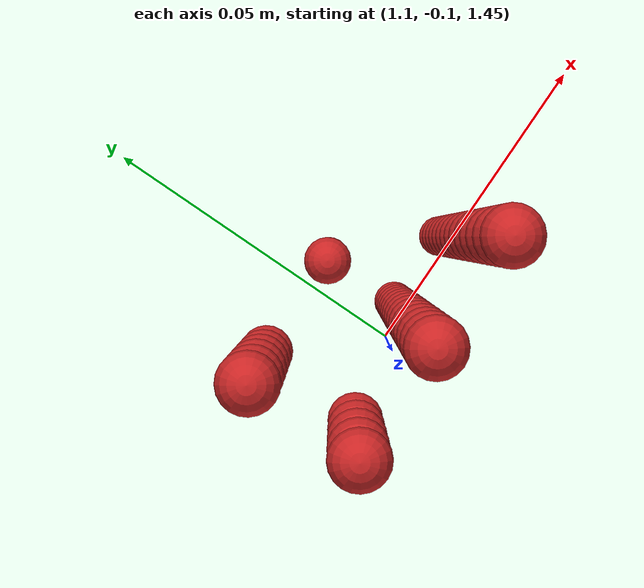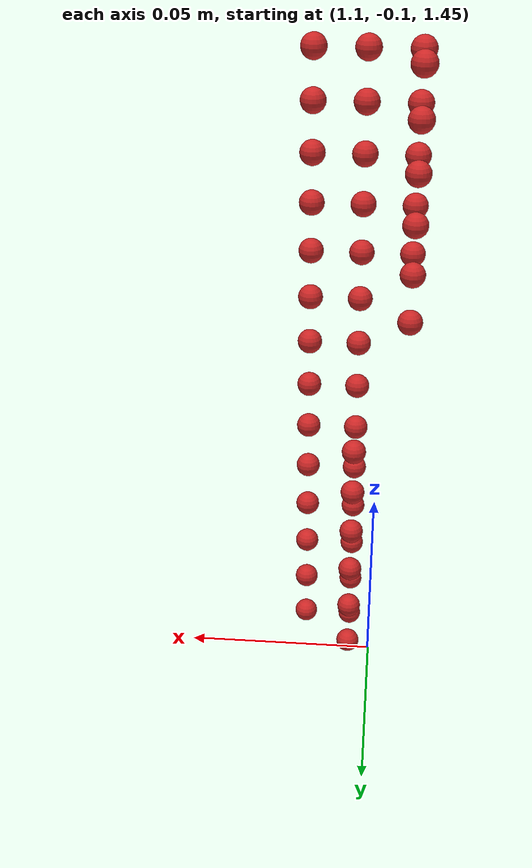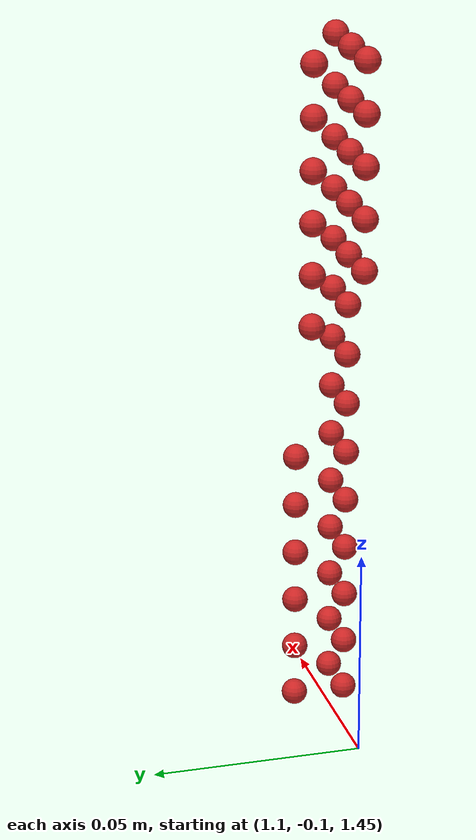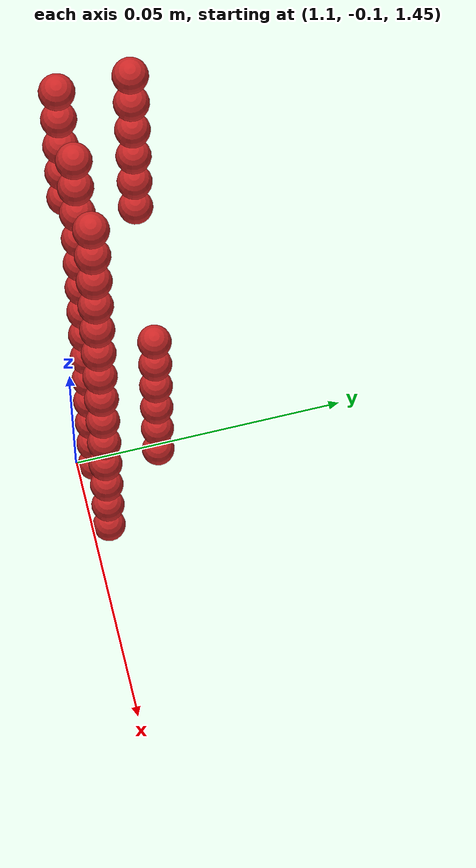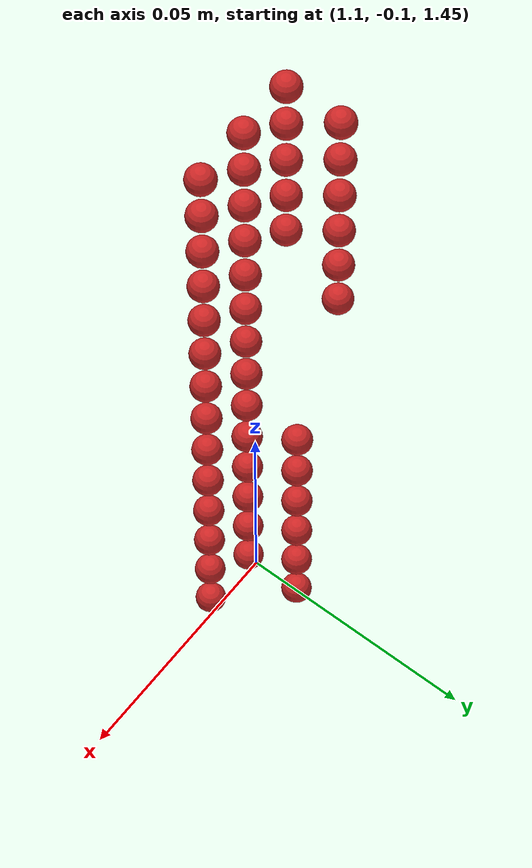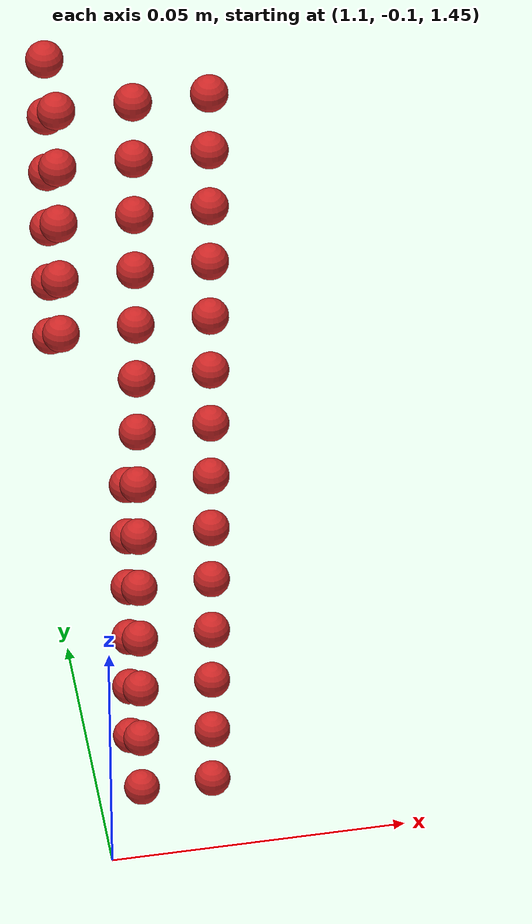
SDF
<sdf version="1.4">
 <world name="default">
  <model name="ground_plane">
   <static>1</static>
   <link name="link">
    <collision name="collision">
     <geometry><plane><normal>0 0 1</normal><size>100 100</size></plane></geometry>
     <surface><friction><ode><mu>100</mu><mu2>50</mu2></ode></friction></surface>
    </collision>
    <visual name="visual">
     <cast_shadows>0</cast_shadows>
     <geometry><plane><normal>0 0 1</normal><size>100 100</size></plane></geometry>
     <material>
      <script><uri>file://media/materials/scripts/gazebo.material</uri><name>Gazebo/Grey</name></script>
     </material>
    </visual>
    <velocity_decay><linear>0</linear><angular>0</angular></velocity_decay>
   </link>
  </model>
  <model name="sphere2">
   <pose>0.552760 -0.048781 0.732288 0 0 0</pose>
   <link name="link">
    <pose>0.552760 -0.048781 0.732288 0 0 0</pose>
    <inertial>
     <mass>0.001</mass>
     <inertia>
      <ixx>0.004</ixx>
      <ixy>0.000000</ixy>
      <ixz>0.000000</ixz>
      <iyy>0.004</iyy>
      <iyz>0.000000</iyz>
      <izz>0.004</izz>
     </inertia>
    </inertial>
    <collision name="collision">
     <surface>
      <contact><ode><kp>10000000000.000000</kp><kd>1</kd></ode></contact>
      <friction><ode><mu>0.01</mu><mu2>0.01</mu2></ode></friction>
     </surface>
     <geometry><sphere><radius>0.003</radius></sphere></geometry>
    </collision>
    <visual name="visual">
     <geometry><sphere><radius>0.003</radius></sphere></geometry>
     <material>
      <script><uri>file://media/materials/scripts/gazebo.material</uri><name>Gazebo/Red</name></script>
     </material>
    </visual>
   </link>
  </model>
  <model name="sphere3">
   <pose>0.558760 -0.048781 0.732288 0 0 0</pose>
   <link name="link">
    <pose>0.558760 -0.048781 0.732288 0 0 0</pose>
    <inertial>
     <mass>0.001</mass>
     <inertia>
      <ixx>0.004</ixx>
      <ixy>0.000000</ixy>
      <ixz>0.000000</ixz>
      <iyy>0.004</iyy>
      <iyz>0.000000</iyz>
      <izz>0.004</izz>
     </inertia>
    </inertial>
    <collision name="collision">
     <surface>
      <contact><ode><kp>10000000000.000000</kp><kd>1</kd></ode></contact>
      <friction><ode><mu>0.01</mu><mu2>0.01</mu2></ode></friction>
     </surface>
     <geometry><sphere><radius>0.003</radius></sphere></geometry>
    </collision>
    <visual name="visual">
     <geometry><sphere><radius>0.003</radius></sphere></geometry>
     <material>
      <script><uri>file://media/materials/scripts/gazebo.material</uri><name>Gazebo/Red</name></script>
     </material>
    </visual>
   </link>
  </model>
  <model name="sphere6">
   <pose>0.552760 -0.042781 0.732288 0 0 0</pose>
   <link name="link">
    <pose>0.552760 -0.042781 0.732288 0 0 0</pose>
    <inertial>
     <mass>0.001</mass>
     <inertia>
      <ixx>0.004</ixx>
      <ixy>0.000000</ixy>
      <ixz>0.000000</ixz>
      <iyy>0.004</iyy>
      <iyz>0.000000</iyz>
      <izz>0.004</izz>
     </inertia>
    </inertial>
    <collision name="collision">
     <surface>
      <contact><ode><kp>10000000000.000000</kp><kd>1</kd></ode></contact>
      <friction><ode><mu>0.01</mu><mu2>0.01</mu2></ode></friction>
     </surface>
     <geometry><sphere><radius>0.003</radius></sphere></geometry>
    </collision>
    <visual name="visual">
     <geometry><sphere><radius>0.003</radius></sphere></geometry>
     <material>
      <script><uri>file://media/materials/scripts/gazebo.material</uri><name>Gazebo/Red</name></script>
     </material>
    </visual>
   </link>
  </model>
  <model name="sphere18">
   <pose>0.552760 -0.048781 0.738288 0 0 0</pose>
   <link name="link">
    <pose>0.552760 -0.048781 0.738288 0 0 0</pose>
    <inertial>
     <mass>0.001</mass>
     <inertia>
      <ixx>0.004</ixx>
      <ixy>0.000000</ixy>
      <ixz>0.000000</ixz>
      <iyy>0.004</iyy>
      <iyz>0.000000</iyz>
      <izz>0.004</izz>
     </inertia>
    </inertial>
    <collision name="collision">
     <surface>
      <contact><ode><kp>10000000000.000000</kp><kd>1</kd></ode></contact>
      <friction><ode><mu>0.01</mu><mu2>0.01</mu2></ode></friction>
     </surface>
     <geometry><sphere><radius>0.003</radius></sphere></geometry>
    </collision>
    <visual name="visual">
     <geometry><sphere><radius>0.003</radius></sphere></geometry>
     <material>
      <script><uri>file://media/materials/scripts/gazebo.material</uri><name>Gazebo/Red</name></script>
     </material>
    </visual>
   </link>
  </model>
  <model name="sphere19">
   <pose>0.558760 -0.048781 0.738288 0 0 0</pose>
   <link name="link">
    <pose>0.558760 -0.048781 0.738288 0 0 0</pose>
    <inertial>
     <mass>0.001</mass>
     <inertia>
      <ixx>0.004</ixx>
      <ixy>0.000000</ixy>
      <ixz>0.000000</ixz>
      <iyy>0.004</iyy>
      <iyz>0.000000</iyz>
      <izz>0.004</izz>
     </inertia>
    </inertial>
    <collision name="collision">
     <surface>
      <contact><ode><kp>10000000000.000000</kp><kd>1</kd></ode></contact>
      <friction><ode><mu>0.01</mu><mu2>0.01</mu2></ode></friction>
     </surface>
     <geometry><sphere><radius>0.003</radius></sphere></geometry>
    </collision>
    <visual name="visual">
     <geometry><sphere><radius>0.003</radius></sphere></geometry>
     <material>
      <script><uri>file://media/materials/scripts/gazebo.material</uri><name>Gazebo/Red</name></script>
     </material>
    </visual>
   </link>
  </model>
  <model name="sphere22">
   <pose>0.552760 -0.042781 0.738288 0 0 0</pose>
   <link name="link">
    <pose>0.552760 -0.042781 0.738288 0 0 0</pose>
    <inertial>
     <mass>0.001</mass>
     <inertia>
      <ixx>0.004</ixx>
      <ixy>0.000000</ixy>
      <ixz>0.000000</ixz>
      <iyy>0.004</iyy>
      <iyz>0.000000</iyz>
      <izz>0.004</izz>
     </inertia>
    </inertial>
    <collision name="collision">
     <surface>
      <contact><ode><kp>10000000000.000000</kp><kd>1</kd></ode></contact>
      <friction><ode><mu>0.01</mu><mu2>0.01</mu2></ode></friction>
     </surface>
     <geometry><sphere><radius>0.003</radius></sphere></geometry>
    </collision>
    <visual name="visual">
     <geometry><sphere><radius>0.003</radius></sphere></geometry>
     <material>
      <script><uri>file://media/materials/scripts/gazebo.material</uri><name>Gazebo/Red</name></script>
     </material>
    </visual>
   </link>
  </model>
  <model name="sphere34">
   <pose>0.552760 -0.048781 0.744288 0 0 0</pose>
   <link name="link">
    <pose>0.552760 -0.048781 0.744288 0 0 0</pose>
    <inertial>
     <mass>0.001</mass>
     <inertia>
      <ixx>0.004</ixx>
      <ixy>0.000000</ixy>
      <ixz>0.000000</ixz>
      <iyy>0.004</iyy>
      <iyz>0.000000</iyz>
      <izz>0.004</izz>
     </inertia>
    </inertial>
    <collision name="collision">
     <surface>
      <contact><ode><kp>10000000000.000000</kp><kd>1</kd></ode></contact>
      <friction><ode><mu>0.01</mu><mu2>0.01</mu2></ode></friction>
     </surface>
     <geometry><sphere><radius>0.003</radius></sphere></geometry>
    </collision>
    <visual name="visual">
     <geometry><sphere><radius>0.003</radius></sphere></geometry>
     <material>
      <script><uri>file://media/materials/scripts/gazebo.material</uri><name>Gazebo/Red</name></script>
     </material>
    </visual>
   </link>
  </model>
  <model name="sphere35">
   <pose>0.558760 -0.048781 0.744288 0 0 0</pose>
   <link name="link">
    <pose>0.558760 -0.048781 0.744288 0 0 0</pose>
    <inertial>
     <mass>0.001</mass>
     <inertia>
      <ixx>0.004</ixx>
      <ixy>0.000000</ixy>
      <ixz>0.000000</ixz>
      <iyy>0.004</iyy>
      <iyz>0.000000</iyz>
      <izz>0.004</izz>
     </inertia>
    </inertial>
    <collision name="collision">
     <surface>
      <contact><ode><kp>10000000000.000000</kp><kd>1</kd></ode></contact>
      <friction><ode><mu>0.01</mu><mu2>0.01</mu2></ode></friction>
     </surface>
     <geometry><sphere><radius>0.003</radius></sphere></geometry>
    </collision>
    <visual name="visual">
     <geometry><sphere><radius>0.003</radius></sphere></geometry>
     <material>
      <script><uri>file://media/materials/scripts/gazebo.material</uri><name>Gazebo/Red</name></script>
     </material>
    </visual>
   </link>
  </model>
  <model name="sphere38">
   <pose>0.552760 -0.042781 0.744288 0 0 0</pose>
   <link name="link">
    <pose>0.552760 -0.042781 0.744288 0 0 0</pose>
    <inertial>
     <mass>0.001</mass>
     <inertia>
      <ixx>0.004</ixx>
      <ixy>0.000000</ixy>
      <ixz>0.000000</ixz>
      <iyy>0.004</iyy>
      <iyz>0.000000</iyz>
      <izz>0.004</izz>
     </inertia>
    </inertial>
    <collision name="collision">
     <surface>
      <contact><ode><kp>10000000000.000000</kp><kd>1</kd></ode></contact>
      <friction><ode><mu>0.01</mu><mu2>0.01</mu2></ode></friction>
     </surface>
     <geometry><sphere><radius>0.003</radius></sphere></geometry>
    </collision>
    <visual name="visual">
     <geometry><sphere><radius>0.003</radius></sphere></geometry>
     <material>
      <script><uri>file://media/materials/scripts/gazebo.material</uri><name>Gazebo/Red</name></script>
     </material>
    </visual>
   </link>
  </model>
  <model name="sphere50">
   <pose>0.552760 -0.048781 0.750288 0 0 0</pose>
   <link name="link">
    <pose>0.552760 -0.048781 0.750288 0 0 0</pose>
    <inertial>
     <mass>0.001</mass>
     <inertia>
      <ixx>0.004</ixx>
      <ixy>0.000000</ixy>
      <ixz>0.000000</ixz>
      <iyy>0.004</iyy>
      <iyz>0.000000</iyz>
      <izz>0.004</izz>
     </inertia>
    </inertial>
    <collision name="collision">
     <surface>
      <contact><ode><kp>10000000000.000000</kp><kd>1</kd></ode></contact>
      <friction><ode><mu>0.01</mu><mu2>0.01</mu2></ode></friction>
     </surface>
     <geometry><sphere><radius>0.003</radius></sphere></geometry>
    </collision>
    <visual name="visual">
     <geometry><sphere><radius>0.003</radius></sphere></geometry>
     <material>
      <script><uri>file://media/materials/scripts/gazebo.material</uri><name>Gazebo/Red</name></script>
     </material>
    </visual>
   </link>
  </model>
  <model name="sphere51">
   <pose>0.558760 -0.048781 0.750288 0 0 0</pose>
   <link name="link">
    <pose>0.558760 -0.048781 0.750288 0 0 0</pose>
    <inertial>
     <mass>0.001</mass>
     <inertia>
      <ixx>0.004</ixx>
      <ixy>0.000000</ixy>
      <ixz>0.000000</ixz>
      <iyy>0.004</iyy>
      <iyz>0.000000</iyz>
      <izz>0.004</izz>
     </inertia>
    </inertial>
    <collision name="collision">
     <surface>
      <contact><ode><kp>10000000000.000000</kp><kd>1</kd></ode></contact>
      <friction><ode><mu>0.01</mu><mu2>0.01</mu2></ode></friction>
     </surface>
     <geometry><sphere><radius>0.003</radius></sphere></geometry>
    </collision>
    <visual name="visual">
     <geometry><sphere><radius>0.003</radius></sphere></geometry>
     <material>
      <script><uri>file://media/materials/scripts/gazebo.material</uri><name>Gazebo/Red</name></script>
     </material>
    </visual>
   </link>
  </model>
  <model name="sphere54">
   <pose>0.552760 -0.042781 0.750288 0 0 0</pose>
   <link name="link">
    <pose>0.552760 -0.042781 0.750288 0 0 0</pose>
    <inertial>
     <mass>0.001</mass>
     <inertia>
      <ixx>0.004</ixx>
      <ixy>0.000000</ixy>
      <ixz>0.000000</ixz>
      <iyy>0.004</iyy>
      <iyz>0.000000</iyz>
      <izz>0.004</izz>
     </inertia>
    </inertial>
    <collision name="collision">
     <surface>
      <contact><ode><kp>10000000000.000000</kp><kd>1</kd></ode></contact>
      <friction><ode><mu>0.01</mu><mu2>0.01</mu2></ode></friction>
     </surface>
     <geometry><sphere><radius>0.003</radius></sphere></geometry>
    </collision>
    <visual name="visual">
     <geometry><sphere><radius>0.003</radius></sphere></geometry>
     <material>
      <script><uri>file://media/materials/scripts/gazebo.material</uri><name>Gazebo/Red</name></script>
     </material>
    </visual>
   </link>
  </model>
  <model name="sphere66">
   <pose>0.552760 -0.048781 0.756288 0 0 0</pose>
   <link name="link">
    <pose>0.552760 -0.048781 0.756288 0 0 0</pose>
    <inertial>
     <mass>0.001</mass>
     <inertia>
      <ixx>0.004</ixx>
      <ixy>0.000000</ixy>
      <ixz>0.000000</ixz>
      <iyy>0.004</iyy>
      <iyz>0.000000</iyz>
      <izz>0.004</izz>
     </inertia>
    </inertial>
    <collision name="collision">
     <surface>
      <contact><ode><kp>10000000000.000000</kp><kd>1</kd></ode></contact>
      <friction><ode><mu>0.01</mu><mu2>0.01</mu2></ode></friction>
     </surface>
     <geometry><sphere><radius>0.003</radius></sphere></geometry>
    </collision>
    <visual name="visual">
     <geometry><sphere><radius>0.003</radius></sphere></geometry>
     <material>
      <script><uri>file://media/materials/scripts/gazebo.material</uri><name>Gazebo/Red</name></script>
     </material>
    </visual>
   </link>
  </model>
  <model name="sphere67">
   <pose>0.558760 -0.048781 0.756288 0 0 0</pose>
   <link name="link">
    <pose>0.558760 -0.048781 0.756288 0 0 0</pose>
    <inertial>
     <mass>0.001</mass>
     <inertia>
      <ixx>0.004</ixx>
      <ixy>0.000000</ixy>
      <ixz>0.000000</ixz>
      <iyy>0.004</iyy>
      <iyz>0.000000</iyz>
      <izz>0.004</izz>
     </inertia>
    </inertial>
    <collision name="collision">
     <surface>
      <contact><ode><kp>10000000000.000000</kp><kd>1</kd></ode></contact>
      <friction><ode><mu>0.01</mu><mu2>0.01</mu2></ode></friction>
     </surface>
     <geometry><sphere><radius>0.003</radius></sphere></geometry>
    </collision>
    <visual name="visual">
     <geometry><sphere><radius>0.003</radius></sphere></geometry>
     <material>
      <script><uri>file://media/materials/scripts/gazebo.material</uri><name>Gazebo/Red</name></script>
     </material>
    </visual>
   </link>
  </model>
  <model name="sphere70">
   <pose>0.552760 -0.042781 0.756288 0 0 0</pose>
   <link name="link">
    <pose>0.552760 -0.042781 0.756288 0 0 0</pose>
    <inertial>
     <mass>0.001</mass>
     <inertia>
      <ixx>0.004</ixx>
      <ixy>0.000000</ixy>
      <ixz>0.000000</ixz>
      <iyy>0.004</iyy>
      <iyz>0.000000</iyz>
      <izz>0.004</izz>
     </inertia>
    </inertial>
    <collision name="collision">
     <surface>
      <contact><ode><kp>10000000000.000000</kp><kd>1</kd></ode></contact>
      <friction><ode><mu>0.01</mu><mu2>0.01</mu2></ode></friction>
     </surface>
     <geometry><sphere><radius>0.003</radius></sphere></geometry>
    </collision>
    <visual name="visual">
     <geometry><sphere><radius>0.003</radius></sphere></geometry>
     <material>
      <script><uri>file://media/materials/scripts/gazebo.material</uri><name>Gazebo/Red</name></script>
     </material>
    </visual>
   </link>
  </model>
  <model name="sphere82">
   <pose>0.552760 -0.048781 0.762288 0 0 0</pose>
   <link name="link">
    <pose>0.552760 -0.048781 0.762288 0 0 0</pose>
    <inertial>
     <mass>0.001</mass>
     <inertia>
      <ixx>0.004</ixx>
      <ixy>0.000000</ixy>
      <ixz>0.000000</ixz>
      <iyy>0.004</iyy>
      <iyz>0.000000</iyz>
      <izz>0.004</izz>
     </inertia>
    </inertial>
    <collision name="collision">
     <surface>
      <contact><ode><kp>10000000000.000000</kp><kd>1</kd></ode></contact>
      <friction><ode><mu>0.01</mu><mu2>0.01</mu2></ode></friction>
     </surface>
     <geometry><sphere><radius>0.003</radius></sphere></geometry>
    </collision>
    <visual name="visual">
     <geometry><sphere><radius>0.003</radius></sphere></geometry>
     <material>
      <script><uri>file://media/materials/scripts/gazebo.material</uri><name>Gazebo/Red</name></script>
     </material>
    </visual>
   </link>
  </model>
  <model name="sphere83">
   <pose>0.558760 -0.048781 0.762288 0 0 0</pose>
   <link name="link">
    <pose>0.558760 -0.048781 0.762288 0 0 0</pose>
    <inertial>
     <mass>0.001</mass>
     <inertia>
      <ixx>0.004</ixx>
      <ixy>0.000000</ixy>
      <ixz>0.000000</ixz>
      <iyy>0.004</iyy>
      <iyz>0.000000</iyz>
      <izz>0.004</izz>
     </inertia>
    </inertial>
    <collision name="collision">
     <surface>
      <contact><ode><kp>10000000000.000000</kp><kd>1</kd></ode></contact>
      <friction><ode><mu>0.01</mu><mu2>0.01</mu2></ode></friction>
     </surface>
     <geometry><sphere><radius>0.003</radius></sphere></geometry>
    </collision>
    <visual name="visual">
     <geometry><sphere><radius>0.003</radius></sphere></geometry>
     <material>
      <script><uri>file://media/materials/scripts/gazebo.material</uri><name>Gazebo/Red</name></script>
     </material>
    </visual>
   </link>
  </model>
  <model name="sphere86">
   <pose>0.552760 -0.042781 0.762288 0 0 0</pose>
   <link name="link">
    <pose>0.552760 -0.042781 0.762288 0 0 0</pose>
    <inertial>
     <mass>0.001</mass>
     <inertia>
      <ixx>0.004</ixx>
      <ixy>0.000000</ixy>
      <ixz>0.000000</ixz>
      <iyy>0.004</iyy>
      <iyz>0.000000</iyz>
      <izz>0.004</izz>
     </inertia>
    </inertial>
    <collision name="collision">
     <surface>
      <contact><ode><kp>10000000000.000000</kp><kd>1</kd></ode></contact>
      <friction><ode><mu>0.01</mu><mu2>0.01</mu2></ode></friction>
     </surface>
     <geometry><sphere><radius>0.003</radius></sphere></geometry>
    </collision>
    <visual name="visual">
     <geometry><sphere><radius>0.003</radius></sphere></geometry>
     <material>
      <script><uri>file://media/materials/scripts/gazebo.material</uri><name>Gazebo/Red</name></script>
     </material>
    </visual>
   </link>
  </model>
  <model name="sphere98">
   <pose>0.552760 -0.048781 0.768288 0 0 0</pose>
   <link name="link">
    <pose>0.552760 -0.048781 0.768288 0 0 0</pose>
    <inertial>
     <mass>0.001</mass>
     <inertia>
      <ixx>0.004</ixx>
      <ixy>0.000000</ixy>
      <ixz>0.000000</ixz>
      <iyy>0.004</iyy>
      <iyz>0.000000</iyz>
      <izz>0.004</izz>
     </inertia>
    </inertial>
    <collision name="collision">
     <surface>
      <contact><ode><kp>10000000000.000000</kp><kd>1</kd></ode></contact>
      <friction><ode><mu>0.01</mu><mu2>0.01</mu2></ode></friction>
     </surface>
     <geometry><sphere><radius>0.003</radius></sphere></geometry>
    </collision>
    <visual name="visual">
     <geometry><sphere><radius>0.003</radius></sphere></geometry>
     <material>
      <script><uri>file://media/materials/scripts/gazebo.material</uri><name>Gazebo/Red</name></script>
     </material>
    </visual>
   </link>
  </model>
  <model name="sphere99">
   <pose>0.558760 -0.048781 0.768288 0 0 0</pose>
   <link name="link">
    <pose>0.558760 -0.048781 0.768288 0 0 0</pose>
    <inertial>
     <mass>0.001</mass>
     <inertia>
      <ixx>0.004</ixx>
      <ixy>0.000000</ixy>
      <ixz>0.000000</ixz>
      <iyy>0.004</iyy>
      <iyz>0.000000</iyz>
      <izz>0.004</izz>
     </inertia>
    </inertial>
    <collision name="collision">
     <surface>
      <contact><ode><kp>10000000000.000000</kp><kd>1</kd></ode></contact>
      <friction><ode><mu>0.01</mu><mu2>0.01</mu2></ode></friction>
     </surface>
     <geometry><sphere><radius>0.003</radius></sphere></geometry>
    </collision>
    <visual name="visual">
     <geometry><sphere><radius>0.003</radius></sphere></geometry>
     <material>
      <script><uri>file://media/materials/scripts/gazebo.material</uri><name>Gazebo/Red</name></script>
     </material>
    </visual>
   </link>
  </model>
  <model name="sphere114">
   <pose>0.552760 -0.048781 0.774288 0 0 0</pose>
   <link name="link">
    <pose>0.552760 -0.048781 0.774288 0 0 0</pose>
    <inertial>
     <mass>0.001</mass>
     <inertia>
      <ixx>0.004</ixx>
      <ixy>0.000000</ixy>
      <ixz>0.000000</ixz>
      <iyy>0.004</iyy>
      <iyz>0.000000</iyz>
      <izz>0.004</izz>
     </inertia>
    </inertial>
    <collision name="collision">
     <surface>
      <contact><ode><kp>10000000000.000000</kp><kd>1</kd></ode></contact>
      <friction><ode><mu>0.01</mu><mu2>0.01</mu2></ode></friction>
     </surface>
     <geometry><sphere><radius>0.003</radius></sphere></geometry>
    </collision>
    <visual name="visual">
     <geometry><sphere><radius>0.003</radius></sphere></geometry>
     <material>
      <script><uri>file://media/materials/scripts/gazebo.material</uri><name>Gazebo/Red</name></script>
     </material>
    </visual>
   </link>
  </model>
  <model name="sphere115">
   <pose>0.558760 -0.048781 0.774288 0 0 0</pose>
   <link name="link">
    <pose>0.558760 -0.048781 0.774288 0 0 0</pose>
    <inertial>
     <mass>0.001</mass>
     <inertia>
      <ixx>0.004</ixx>
      <ixy>0.000000</ixy>
      <ixz>0.000000</ixz>
      <iyy>0.004</iyy>
      <iyz>0.000000</iyz>
      <izz>0.004</izz>
     </inertia>
    </inertial>
    <collision name="collision">
     <surface>
      <contact><ode><kp>10000000000.000000</kp><kd>1</kd></ode></contact>
      <friction><ode><mu>0.01</mu><mu2>0.01</mu2></ode></friction>
     </surface>
     <geometry><sphere><radius>0.003</radius></sphere></geometry>
    </collision>
    <visual name="visual">
     <geometry><sphere><radius>0.003</radius></sphere></geometry>
     <material>
      <script><uri>file://media/materials/scripts/gazebo.material</uri><name>Gazebo/Red</name></script>
     </material>
    </visual>
   </link>
  </model>
  <model name="sphere130">
   <pose>0.552760 -0.048781 0.780288 0 0 0</pose>
   <link name="link">
    <pose>0.552760 -0.048781 0.780288 0 0 0</pose>
    <inertial>
     <mass>0.001</mass>
     <inertia>
      <ixx>0.004</ixx>
      <ixy>0.000000</ixy>
      <ixz>0.000000</ixz>
      <iyy>0.004</iyy>
      <iyz>0.000000</iyz>
      <izz>0.004</izz>
     </inertia>
    </inertial>
    <collision name="collision">
     <surface>
      <contact><ode><kp>10000000000.000000</kp><kd>1</kd></ode></contact>
      <friction><ode><mu>0.01</mu><mu2>0.01</mu2></ode></friction>
     </surface>
     <geometry><sphere><radius>0.003</radius></sphere></geometry>
    </collision>
    <visual name="visual">
     <geometry><sphere><radius>0.003</radius></sphere></geometry>
     <material>
      <script><uri>file://media/materials/scripts/gazebo.material</uri><name>Gazebo/Red</name></script>
     </material>
    </visual>
   </link>
  </model>
  <model name="sphere131">
   <pose>0.558760 -0.048781 0.780288 0 0 0</pose>
   <link name="link">
    <pose>0.558760 -0.048781 0.780288 0 0 0</pose>
    <inertial>
     <mass>0.001</mass>
     <inertia>
      <ixx>0.004</ixx>
      <ixy>0.000000</ixy>
      <ixz>0.000000</ixz>
      <iyy>0.004</iyy>
      <iyz>0.000000</iyz>
      <izz>0.004</izz>
     </inertia>
    </inertial>
    <collision name="collision">
     <surface>
      <contact><ode><kp>10000000000.000000</kp><kd>1</kd></ode></contact>
      <friction><ode><mu>0.01</mu><mu2>0.01</mu2></ode></friction>
     </surface>
     <geometry><sphere><radius>0.003</radius></sphere></geometry>
    </collision>
    <visual name="visual">
     <geometry><sphere><radius>0.003</radius></sphere></geometry>
     <material>
      <script><uri>file://media/materials/scripts/gazebo.material</uri><name>Gazebo/Red</name></script>
     </material>
    </visual>
   </link>
  </model>
  <model name="sphere133">
   <pose>0.546760 -0.042781 0.780288 0 0 0</pose>
   <link name="link">
    <pose>0.546760 -0.042781 0.780288 0 0 0</pose>
    <inertial>
     <mass>0.001</mass>
     <inertia>
      <ixx>0.004</ixx>
      <ixy>0.000000</ixy>
      <ixz>0.000000</ixz>
      <iyy>0.004</iyy>
      <iyz>0.000000</iyz>
      <izz>0.004</izz>
     </inertia>
    </inertial>
    <collision name="collision">
     <surface>
      <contact><ode><kp>10000000000.000000</kp><kd>1</kd></ode></contact>
      <friction><ode><mu>0.01</mu><mu2>0.01</mu2></ode></friction>
     </surface>
     <geometry><sphere><radius>0.003</radius></sphere></geometry>
    </collision>
    <visual name="visual">
     <geometry><sphere><radius>0.003</radius></sphere></geometry>
     <material>
      <script><uri>file://media/materials/scripts/gazebo.material</uri><name>Gazebo/Red</name></script>
     </material>
    </visual>
   </link>
  </model>
  <model name="sphere145">
   <pose>0.546760 -0.048781 0.786288 0 0 0</pose>
   <link name="link">
    <pose>0.546760 -0.048781 0.786288 0 0 0</pose>
    <inertial>
     <mass>0.001</mass>
     <inertia>
      <ixx>0.004</ixx>
      <ixy>0.000000</ixy>
      <ixz>0.000000</ixz>
      <iyy>0.004</iyy>
      <iyz>0.000000</iyz>
      <izz>0.004</izz>
     </inertia>
    </inertial>
    <collision name="collision">
     <surface>
      <contact><ode><kp>10000000000.000000</kp><kd>1</kd></ode></contact>
      <friction><ode><mu>0.01</mu><mu2>0.01</mu2></ode></friction>
     </surface>
     <geometry><sphere><radius>0.003</radius></sphere></geometry>
    </collision>
    <visual name="visual">
     <geometry><sphere><radius>0.003</radius></sphere></geometry>
     <material>
      <script><uri>file://media/materials/scripts/gazebo.material</uri><name>Gazebo/Red</name></script>
     </material>
    </visual>
   </link>
  </model>
  <model name="sphere146">
   <pose>0.552760 -0.048781 0.786288 0 0 0</pose>
   <link name="link">
    <pose>0.552760 -0.048781 0.786288 0 0 0</pose>
    <inertial>
     <mass>0.001</mass>
     <inertia>
      <ixx>0.004</ixx>
      <ixy>0.000000</ixy>
      <ixz>0.000000</ixz>
      <iyy>0.004</iyy>
      <iyz>0.000000</iyz>
      <izz>0.004</izz>
     </inertia>
    </inertial>
    <collision name="collision">
     <surface>
      <contact><ode><kp>10000000000.000000</kp><kd>1</kd></ode></contact>
      <friction><ode><mu>0.01</mu><mu2>0.01</mu2></ode></friction>
     </surface>
     <geometry><sphere><radius>0.003</radius></sphere></geometry>
    </collision>
    <visual name="visual">
     <geometry><sphere><radius>0.003</radius></sphere></geometry>
     <material>
      <script><uri>file://media/materials/scripts/gazebo.material</uri><name>Gazebo/Red</name></script>
     </material>
    </visual>
   </link>
  </model>
  <model name="sphere147">
   <pose>0.558760 -0.048781 0.786288 0 0 0</pose>
   <link name="link">
    <pose>0.558760 -0.048781 0.786288 0 0 0</pose>
    <inertial>
     <mass>0.001</mass>
     <inertia>
      <ixx>0.004</ixx>
      <ixy>0.000000</ixy>
      <ixz>0.000000</ixz>
      <iyy>0.004</iyy>
      <iyz>0.000000</iyz>
      <izz>0.004</izz>
     </inertia>
    </inertial>
    <collision name="collision">
     <surface>
      <contact><ode><kp>10000000000.000000</kp><kd>1</kd></ode></contact>
      <friction><ode><mu>0.01</mu><mu2>0.01</mu2></ode></friction>
     </surface>
     <geometry><sphere><radius>0.003</radius></sphere></geometry>
    </collision>
    <visual name="visual">
     <geometry><sphere><radius>0.003</radius></sphere></geometry>
     <material>
      <script><uri>file://media/materials/scripts/gazebo.material</uri><name>Gazebo/Red</name></script>
     </material>
    </visual>
   </link>
  </model>
  <model name="sphere149">
   <pose>0.546760 -0.042781 0.786288 0 0 0</pose>
   <link name="link">
    <pose>0.546760 -0.042781 0.786288 0 0 0</pose>
    <inertial>
     <mass>0.001</mass>
     <inertia>
      <ixx>0.004</ixx>
      <ixy>0.000000</ixy>
      <ixz>0.000000</ixz>
      <iyy>0.004</iyy>
      <iyz>0.000000</iyz>
      <izz>0.004</izz>
     </inertia>
    </inertial>
    <collision name="collision">
     <surface>
      <contact><ode><kp>10000000000.000000</kp><kd>1</kd></ode></contact>
      <friction><ode><mu>0.01</mu><mu2>0.01</mu2></ode></friction>
     </surface>
     <geometry><sphere><radius>0.003</radius></sphere></geometry>
    </collision>
    <visual name="visual">
     <geometry><sphere><radius>0.003</radius></sphere></geometry>
     <material>
      <script><uri>file://media/materials/scripts/gazebo.material</uri><name>Gazebo/Red</name></script>
     </material>
    </visual>
   </link>
  </model>
  <model name="sphere161">
   <pose>0.546760 -0.048781 0.792288 0 0 0</pose>
   <link name="link">
    <pose>0.546760 -0.048781 0.792288 0 0 0</pose>
    <inertial>
     <mass>0.001</mass>
     <inertia>
      <ixx>0.004</ixx>
      <ixy>0.000000</ixy>
      <ixz>0.000000</ixz>
      <iyy>0.004</iyy>
      <iyz>0.000000</iyz>
      <izz>0.004</izz>
     </inertia>
    </inertial>
    <collision name="collision">
     <surface>
      <contact><ode><kp>10000000000.000000</kp><kd>1</kd></ode></contact>
      <friction><ode><mu>0.01</mu><mu2>0.01</mu2></ode></friction>
     </surface>
     <geometry><sphere><radius>0.003</radius></sphere></geometry>
    </collision>
    <visual name="visual">
     <geometry><sphere><radius>0.003</radius></sphere></geometry>
     <material>
      <script><uri>file://media/materials/scripts/gazebo.material</uri><name>Gazebo/Red</name></script>
     </material>
    </visual>
   </link>
  </model>
  <model name="sphere162">
   <pose>0.552760 -0.048781 0.792288 0 0 0</pose>
   <link name="link">
    <pose>0.552760 -0.048781 0.792288 0 0 0</pose>
    <inertial>
     <mass>0.001</mass>
     <inertia>
      <ixx>0.004</ixx>
      <ixy>0.000000</ixy>
      <ixz>0.000000</ixz>
      <iyy>0.004</iyy>
      <iyz>0.000000</iyz>
      <izz>0.004</izz>
     </inertia>
    </inertial>
    <collision name="collision">
     <surface>
      <contact><ode><kp>10000000000.000000</kp><kd>1</kd></ode></contact>
      <friction><ode><mu>0.01</mu><mu2>0.01</mu2></ode></friction>
     </surface>
     <geometry><sphere><radius>0.003</radius></sphere></geometry>
    </collision>
    <visual name="visual">
     <geometry><sphere><radius>0.003</radius></sphere></geometry>
     <material>
      <script><uri>file://media/materials/scripts/gazebo.material</uri><name>Gazebo/Red</name></script>
     </material>
    </visual>
   </link>
  </model>
  <model name="sphere163">
   <pose>0.558760 -0.048781 0.792288 0 0 0</pose>
   <link name="link">
    <pose>0.558760 -0.048781 0.792288 0 0 0</pose>
    <inertial>
     <mass>0.001</mass>
     <inertia>
      <ixx>0.004</ixx>
      <ixy>0.000000</ixy>
      <ixz>0.000000</ixz>
      <iyy>0.004</iyy>
      <iyz>0.000000</iyz>
      <izz>0.004</izz>
     </inertia>
    </inertial>
    <collision name="collision">
     <surface>
      <contact><ode><kp>10000000000.000000</kp><kd>1</kd></ode></contact>
      <friction><ode><mu>0.01</mu><mu2>0.01</mu2></ode></friction>
     </surface>
     <geometry><sphere><radius>0.003</radius></sphere></geometry>
    </collision>
    <visual name="visual">
     <geometry><sphere><radius>0.003</radius></sphere></geometry>
     <material>
      <script><uri>file://media/materials/scripts/gazebo.material</uri><name>Gazebo/Red</name></script>
     </material>
    </visual>
   </link>
  </model>
  <model name="sphere165">
   <pose>0.546760 -0.042781 0.792288 0 0 0</pose>
   <link name="link">
    <pose>0.546760 -0.042781 0.792288 0 0 0</pose>
    <inertial>
     <mass>0.001</mass>
     <inertia>
      <ixx>0.004</ixx>
      <ixy>0.000000</ixy>
      <ixz>0.000000</ixz>
      <iyy>0.004</iyy>
      <iyz>0.000000</iyz>
      <izz>0.004</izz>
     </inertia>
    </inertial>
    <collision name="collision">
     <surface>
      <contact><ode><kp>10000000000.000000</kp><kd>1</kd></ode></contact>
      <friction><ode><mu>0.01</mu><mu2>0.01</mu2></ode></friction>
     </surface>
     <geometry><sphere><radius>0.003</radius></sphere></geometry>
    </collision>
    <visual name="visual">
     <geometry><sphere><radius>0.003</radius></sphere></geometry>
     <material>
      <script><uri>file://media/materials/scripts/gazebo.material</uri><name>Gazebo/Red</name></script>
     </material>
    </visual>
   </link>
  </model>
  <model name="sphere177">
   <pose>0.546760 -0.048781 0.798288 0 0 0</pose>
   <link name="link">
    <pose>0.546760 -0.048781 0.798288 0 0 0</pose>
    <inertial>
     <mass>0.001</mass>
     <inertia>
      <ixx>0.004</ixx>
      <ixy>0.000000</ixy>
      <ixz>0.000000</ixz>
      <iyy>0.004</iyy>
      <iyz>0.000000</iyz>
      <izz>0.004</izz>
     </inertia>
    </inertial>
    <collision name="collision">
     <surface>
      <contact><ode><kp>10000000000.000000</kp><kd>1</kd></ode></contact>
      <friction><ode><mu>0.01</mu><mu2>0.01</mu2></ode></friction>
     </surface>
     <geometry><sphere><radius>0.003</radius></sphere></geometry>
    </collision>
    <visual name="visual">
     <geometry><sphere><radius>0.003</radius></sphere></geometry>
     <material>
      <script><uri>file://media/materials/scripts/gazebo.material</uri><name>Gazebo/Red</name></script>
     </material>
    </visual>
   </link>
  </model>
  <model name="sphere178">
   <pose>0.552760 -0.048781 0.798288 0 0 0</pose>
   <link name="link">
    <pose>0.552760 -0.048781 0.798288 0 0 0</pose>
    <inertial>
     <mass>0.001</mass>
     <inertia>
      <ixx>0.004</ixx>
      <ixy>0.000000</ixy>
      <ixz>0.000000</ixz>
      <iyy>0.004</iyy>
      <iyz>0.000000</iyz>
      <izz>0.004</izz>
     </inertia>
    </inertial>
    <collision name="collision">
     <surface>
      <contact><ode><kp>10000000000.000000</kp><kd>1</kd></ode></contact>
      <friction><ode><mu>0.01</mu><mu2>0.01</mu2></ode></friction>
     </surface>
     <geometry><sphere><radius>0.003</radius></sphere></geometry>
    </collision>
    <visual name="visual">
     <geometry><sphere><radius>0.003</radius></sphere></geometry>
     <material>
      <script><uri>file://media/materials/scripts/gazebo.material</uri><name>Gazebo/Red</name></script>
     </material>
    </visual>
   </link>
  </model>
  <model name="sphere179">
   <pose>0.558760 -0.048781 0.798288 0 0 0</pose>
   <link name="link">
    <pose>0.558760 -0.048781 0.798288 0 0 0</pose>
    <inertial>
     <mass>0.001</mass>
     <inertia>
      <ixx>0.004</ixx>
      <ixy>0.000000</ixy>
      <ixz>0.000000</ixz>
      <iyy>0.004</iyy>
      <iyz>0.000000</iyz>
      <izz>0.004</izz>
     </inertia>
    </inertial>
    <collision name="collision">
     <surface>
      <contact><ode><kp>10000000000.000000</kp><kd>1</kd></ode></contact>
      <friction><ode><mu>0.01</mu><mu2>0.01</mu2></ode></friction>
     </surface>
     <geometry><sphere><radius>0.003</radius></sphere></geometry>
    </collision>
    <visual name="visual">
     <geometry><sphere><radius>0.003</radius></sphere></geometry>
     <material>
      <script><uri>file://media/materials/scripts/gazebo.material</uri><name>Gazebo/Red</name></script>
     </material>
    </visual>
   </link>
  </model>
  <model name="sphere181">
   <pose>0.546760 -0.042781 0.798288 0 0 0</pose>
   <link name="link">
    <pose>0.546760 -0.042781 0.798288 0 0 0</pose>
    <inertial>
     <mass>0.001</mass>
     <inertia>
      <ixx>0.004</ixx>
      <ixy>0.000000</ixy>
      <ixz>0.000000</ixz>
      <iyy>0.004</iyy>
      <iyz>0.000000</iyz>
      <izz>0.004</izz>
     </inertia>
    </inertial>
    <collision name="collision">
     <surface>
      <contact><ode><kp>10000000000.000000</kp><kd>1</kd></ode></contact>
      <friction><ode><mu>0.01</mu><mu2>0.01</mu2></ode></friction>
     </surface>
     <geometry><sphere><radius>0.003</radius></sphere></geometry>
    </collision>
    <visual name="visual">
     <geometry><sphere><radius>0.003</radius></sphere></geometry>
     <material>
      <script><uri>file://media/materials/scripts/gazebo.material</uri><name>Gazebo/Red</name></script>
     </material>
    </visual>
   </link>
  </model>
  <model name="sphere193">
   <pose>0.546760 -0.048781 0.804288 0 0 0</pose>
   <link name="link">
    <pose>0.546760 -0.048781 0.804288 0 0 0</pose>
    <inertial>
     <mass>0.001</mass>
     <inertia>
      <ixx>0.004</ixx>
      <ixy>0.000000</ixy>
      <ixz>0.000000</ixz>
      <iyy>0.004</iyy>
      <iyz>0.000000</iyz>
      <izz>0.004</izz>
     </inertia>
    </inertial>
    <collision name="collision">
     <surface>
      <contact><ode><kp>10000000000.000000</kp><kd>1</kd></ode></contact>
      <friction><ode><mu>0.01</mu><mu2>0.01</mu2></ode></friction>
     </surface>
     <geometry><sphere><radius>0.003</radius></sphere></geometry>
    </collision>
    <visual name="visual">
     <geometry><sphere><radius>0.003</radius></sphere></geometry>
     <material>
      <script><uri>file://media/materials/scripts/gazebo.material</uri><name>Gazebo/Red</name></script>
     </material>
    </visual>
   </link>
  </model>
  <model name="sphere194">
   <pose>0.552760 -0.048781 0.804288 0 0 0</pose>
   <link name="link">
    <pose>0.552760 -0.048781 0.804288 0 0 0</pose>
    <inertial>
     <mass>0.001</mass>
     <inertia>
      <ixx>0.004</ixx>
      <ixy>0.000000</ixy>
      <ixz>0.000000</ixz>
      <iyy>0.004</iyy>
      <iyz>0.000000</iyz>
      <izz>0.004</izz>
     </inertia>
    </inertial>
    <collision name="collision">
     <surface>
      <contact><ode><kp>10000000000.000000</kp><kd>1</kd></ode></contact>
      <friction><ode><mu>0.01</mu><mu2>0.01</mu2></ode></friction>
     </surface>
     <geometry><sphere><radius>0.003</radius></sphere></geometry>
    </collision>
    <visual name="visual">
     <geometry><sphere><radius>0.003</radius></sphere></geometry>
     <material>
      <script><uri>file://media/materials/scripts/gazebo.material</uri><name>Gazebo/Red</name></script>
     </material>
    </visual>
   </link>
  </model>
  <model name="sphere195">
   <pose>0.558760 -0.048781 0.804288 0 0 0</pose>
   <link name="link">
    <pose>0.558760 -0.048781 0.804288 0 0 0</pose>
    <inertial>
     <mass>0.001</mass>
     <inertia>
      <ixx>0.004</ixx>
      <ixy>0.000000</ixy>
      <ixz>0.000000</ixz>
      <iyy>0.004</iyy>
      <iyz>0.000000</iyz>
      <izz>0.004</izz>
     </inertia>
    </inertial>
    <collision name="collision">
     <surface>
      <contact><ode><kp>10000000000.000000</kp><kd>1</kd></ode></contact>
      <friction><ode><mu>0.01</mu><mu2>0.01</mu2></ode></friction>
     </surface>
     <geometry><sphere><radius>0.003</radius></sphere></geometry>
    </collision>
    <visual name="visual">
     <geometry><sphere><radius>0.003</radius></sphere></geometry>
     <material>
      <script><uri>file://media/materials/scripts/gazebo.material</uri><name>Gazebo/Red</name></script>
     </material>
    </visual>
   </link>
  </model>
  <model name="sphere197">
   <pose>0.546760 -0.042781 0.804288 0 0 0</pose>
   <link name="link">
    <pose>0.546760 -0.042781 0.804288 0 0 0</pose>
    <inertial>
     <mass>0.001</mass>
     <inertia>
      <ixx>0.004</ixx>
      <ixy>0.000000</ixy>
      <ixz>0.000000</ixz>
      <iyy>0.004</iyy>
      <iyz>0.000000</iyz>
      <izz>0.004</izz>
     </inertia>
    </inertial>
    <collision name="collision">
     <surface>
      <contact><ode><kp>10000000000.000000</kp><kd>1</kd></ode></contact>
      <friction><ode><mu>0.01</mu><mu2>0.01</mu2></ode></friction>
     </surface>
     <geometry><sphere><radius>0.003</radius></sphere></geometry>
    </collision>
    <visual name="visual">
     <geometry><sphere><radius>0.003</radius></sphere></geometry>
     <material>
      <script><uri>file://media/materials/scripts/gazebo.material</uri><name>Gazebo/Red</name></script>
     </material>
    </visual>
   </link>
  </model>
  <model name="sphere209">
   <pose>0.546760 -0.048781 0.810288 0 0 0</pose>
   <link name="link">
    <pose>0.546760 -0.048781 0.810288 0 0 0</pose>
    <inertial>
     <mass>0.001</mass>
     <inertia>
      <ixx>0.004</ixx>
      <ixy>0.000000</ixy>
      <ixz>0.000000</ixz>
      <iyy>0.004</iyy>
      <iyz>0.000000</iyz>
      <izz>0.004</izz>
     </inertia>
    </inertial>
    <collision name="collision">
     <surface>
      <contact><ode><kp>10000000000.000000</kp><kd>1</kd></ode></contact>
      <friction><ode><mu>0.01</mu><mu2>0.01</mu2></ode></friction>
     </surface>
     <geometry><sphere><radius>0.003</radius></sphere></geometry>
    </collision>
    <visual name="visual">
     <geometry><sphere><radius>0.003</radius></sphere></geometry>
     <material>
      <script><uri>file://media/materials/scripts/gazebo.material</uri><name>Gazebo/Red</name></script>
     </material>
    </visual>
   </link>
  </model>
  <model name="sphere210">
   <pose>0.552760 -0.048781 0.810288 0 0 0</pose>
   <link name="link">
    <pose>0.552760 -0.048781 0.810288 0 0 0</pose>
    <inertial>
     <mass>0.001</mass>
     <inertia>
      <ixx>0.004</ixx>
      <ixy>0.000000</ixy>
      <ixz>0.000000</ixz>
      <iyy>0.004</iyy>
      <iyz>0.000000</iyz>
      <izz>0.004</izz>
     </inertia>
    </inertial>
    <collision name="collision">
     <surface>
      <contact><ode><kp>10000000000.000000</kp><kd>1</kd></ode></contact>
      <friction><ode><mu>0.01</mu><mu2>0.01</mu2></ode></friction>
     </surface>
     <geometry><sphere><radius>0.003</radius></sphere></geometry>
    </collision>
    <visual name="visual">
     <geometry><sphere><radius>0.003</radius></sphere></geometry>
     <material>
      <script><uri>file://media/materials/scripts/gazebo.material</uri><name>Gazebo/Red</name></script>
     </material>
    </visual>
   </link>
  </model>
  <model name="sphere211">
   <pose>0.558760 -0.048781 0.810288 0 0 0</pose>
   <link name="link">
    <pose>0.558760 -0.048781 0.810288 0 0 0</pose>
    <inertial>
     <mass>0.001</mass>
     <inertia>
      <ixx>0.004</ixx>
      <ixy>0.000000</ixy>
      <ixz>0.000000</ixz>
      <iyy>0.004</iyy>
      <iyz>0.000000</iyz>
      <izz>0.004</izz>
     </inertia>
    </inertial>
    <collision name="collision">
     <surface>
      <contact><ode><kp>10000000000.000000</kp><kd>1</kd></ode></contact>
      <friction><ode><mu>0.01</mu><mu2>0.01</mu2></ode></friction>
     </surface>
     <geometry><sphere><radius>0.003</radius></sphere></geometry>
    </collision>
    <visual name="visual">
     <geometry><sphere><radius>0.003</radius></sphere></geometry>
     <material>
      <script><uri>file://media/materials/scripts/gazebo.material</uri><name>Gazebo/Red</name></script>
     </material>
    </visual>
   </link>
  </model>
  <model name="sphere213">
   <pose>0.546760 -0.042781 0.810288 0 0 0</pose>
   <link name="link">
    <pose>0.546760 -0.042781 0.810288 0 0 0</pose>
    <inertial>
     <mass>0.001</mass>
     <inertia>
      <ixx>0.004</ixx>
      <ixy>0.000000</ixy>
      <ixz>0.000000</ixz>
      <iyy>0.004</iyy>
      <iyz>0.000000</iyz>
      <izz>0.004</izz>
     </inertia>
    </inertial>
    <collision name="collision">
     <surface>
      <contact><ode><kp>10000000000.000000</kp><kd>1</kd></ode></contact>
      <friction><ode><mu>0.01</mu><mu2>0.01</mu2></ode></friction>
     </surface>
     <geometry><sphere><radius>0.003</radius></sphere></geometry>
    </collision>
    <visual name="visual">
     <geometry><sphere><radius>0.003</radius></sphere></geometry>
     <material>
      <script><uri>file://media/materials/scripts/gazebo.material</uri><name>Gazebo/Red</name></script>
     </material>
    </visual>
   </link>
  </model>
 </world>
</sdf>
